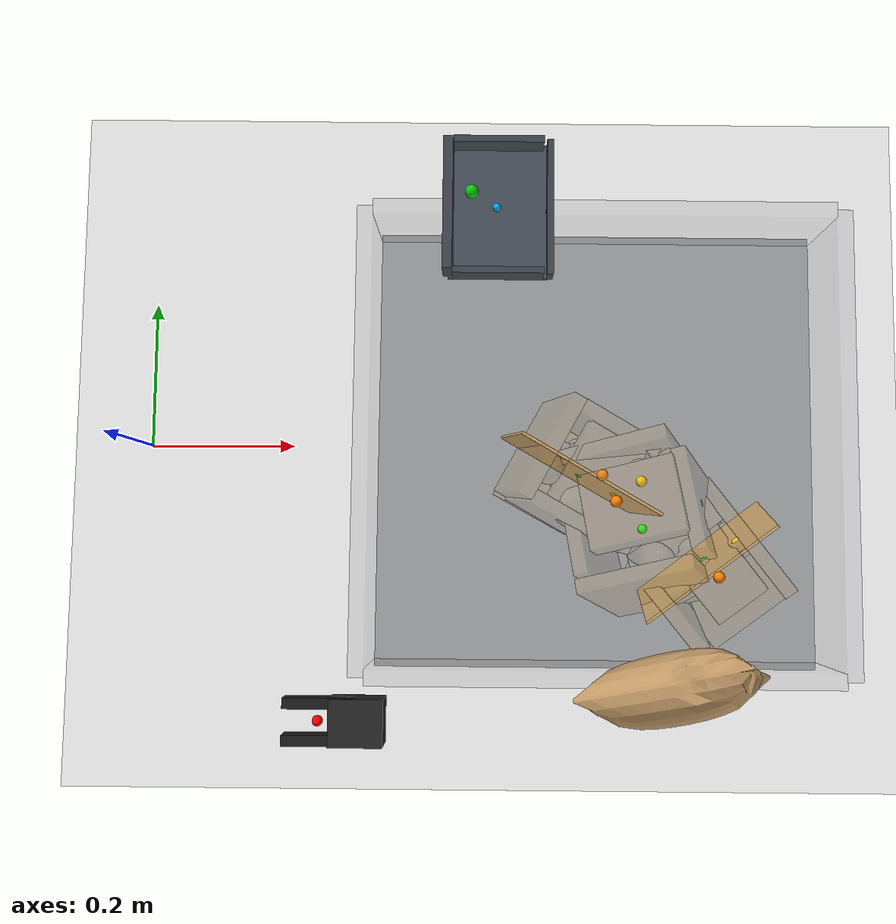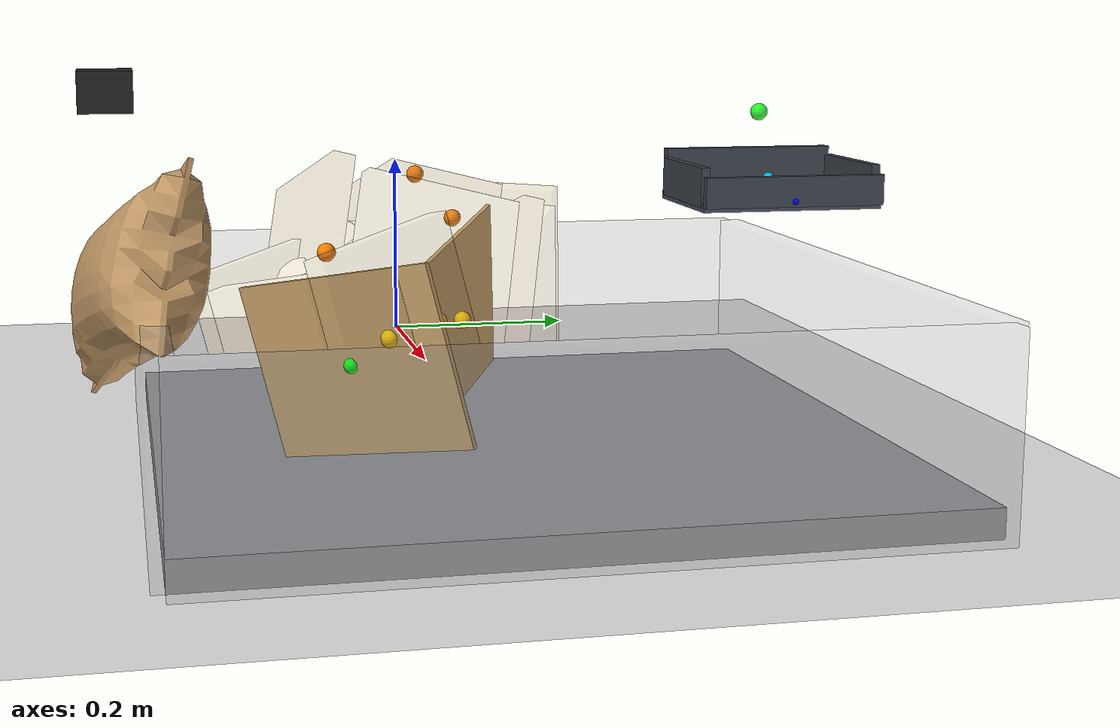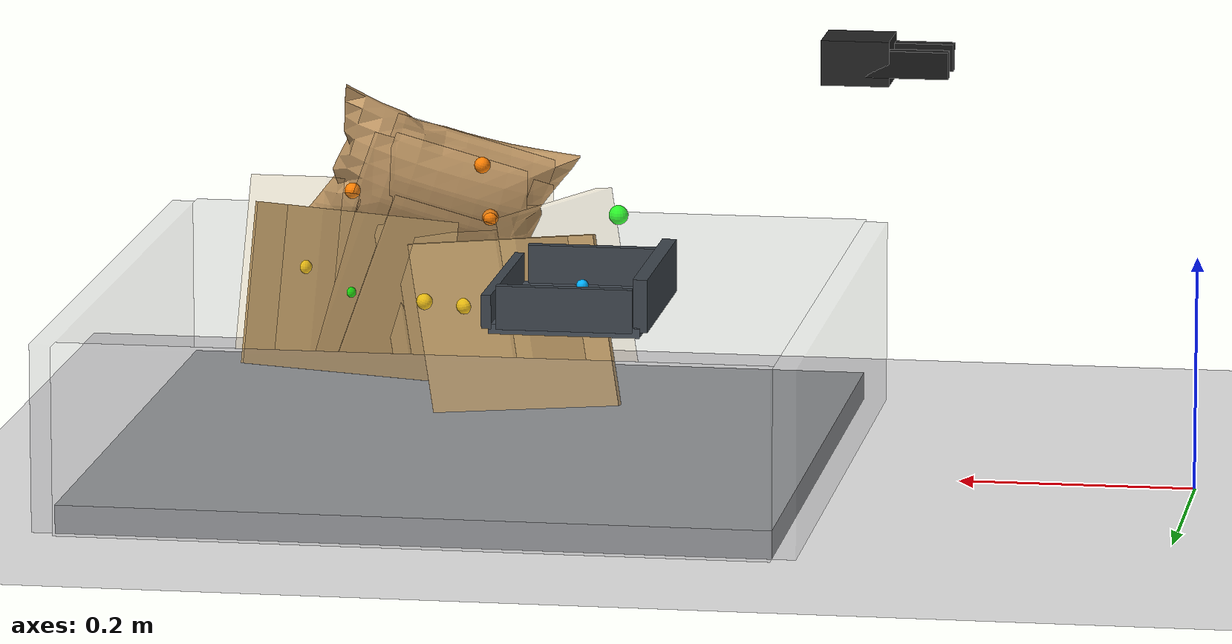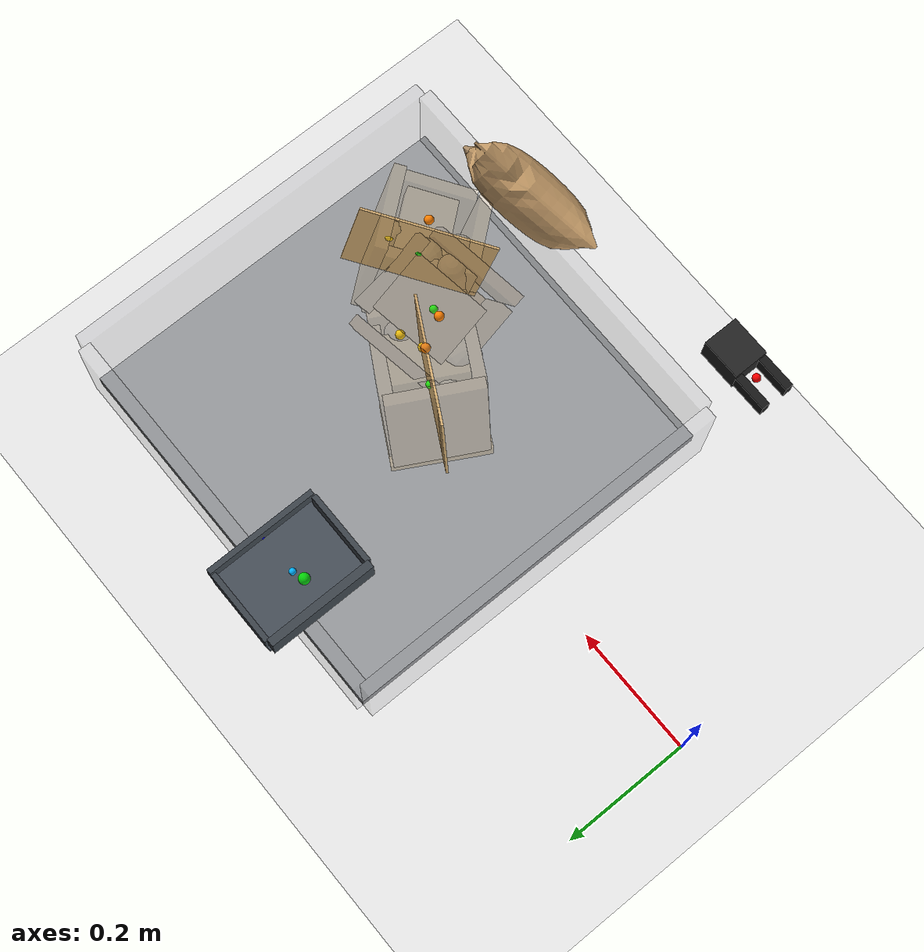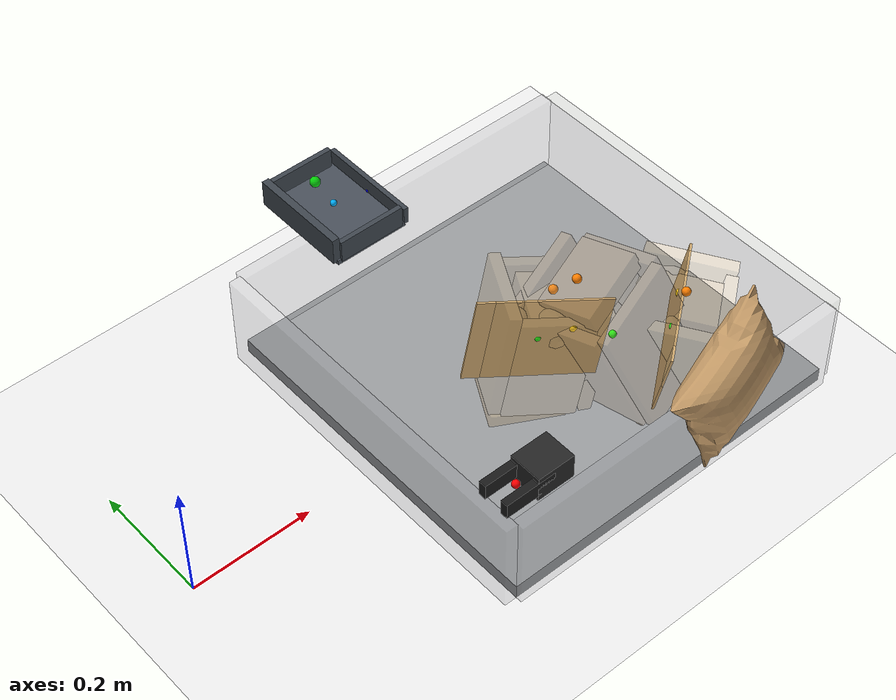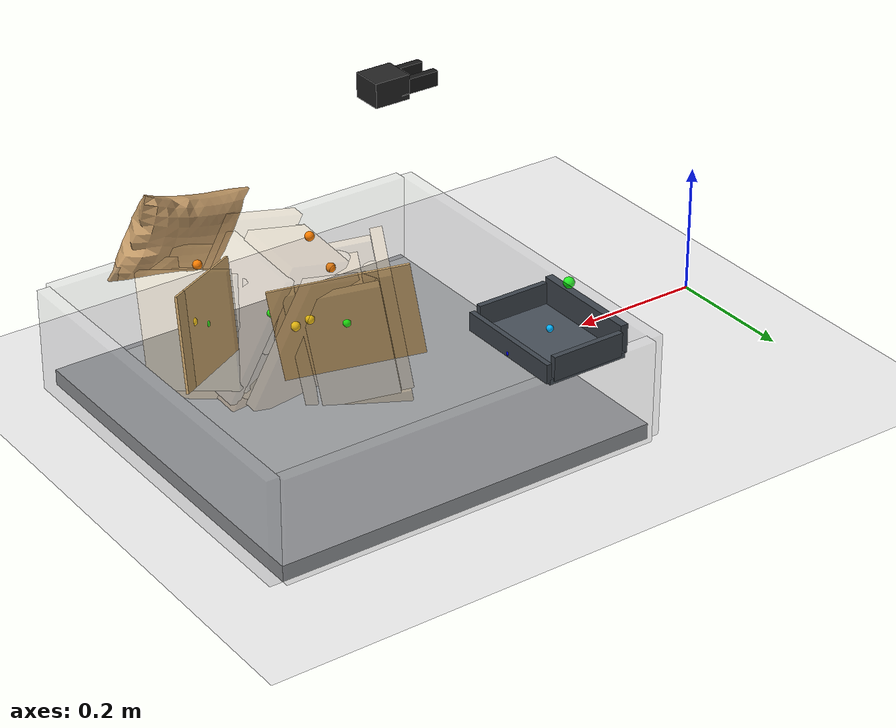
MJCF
<mujoco model="low_fill_top_collapsed_top_exposed_ep0_try2">
  <compiler angle="radian" coordinate="local" inertiafromgeom="true" meshdir="D:/Michael/2025/01.Research/01.Parceldetection/16.Pybullet/bullet3-master (1)/bullet3-master/examples/pybullet/examples/DeformableTest/Sackcodex2/object"/>
  <option timestep="0.002" gravity="0 0 -9.81" integrator="implicitfast" iterations="100" tolerance="1e-8"/>
  <size memory="768M" nconmax="12000"/>

  <visual>
    <global azimuth="128" elevation="-20"/>
    <headlight ambient="0.34 0.34 0.34" diffuse="0.78 0.78 0.78" specular="0.15 0.15 0.15"/>
    <rgba haze="0.11 0.13 0.18 1"/>
  </visual>

  <default>
    <geom condim="4" friction="1.15 0.03 0.01" margin="0.003" solimp="0.93 0.98 0.003" solref="0.012 1"/>
    <joint damping="1.2" armature="0.002"/>
    <position kp="2500" forcelimited="true" forcerange="-420 420"/>
    <motor ctrllimited="true"/>
  </default>

  <asset>
    <mesh name="sack_0_visual_mesh" file="sack2.obj" scale="0.0705 0.0705 0.0741"/>
    <mesh name="sack_1_visual_mesh" file="sack3.obj" scale="0.0765 0.0765 0.0806"/>
    <mesh name="sack_2_visual_mesh" file="sack2.obj" scale="0.0690 0.0690 0.0703"/>
  </asset>

  <worldbody>
    <light name="key" pos="0.85 0.15 1.8" dir="-0.2 -0.1 -1" directional="true"/>
    <geom name="floor" type="plane" size="2 2 0.1" rgba="0.93 0.93 0.93 1"/>
    <geom name="work_pad" type="box" pos="0.62 0 0.012" size="0.30 0.30 0.012" rgba="0.60 0.61 0.62 1" friction="1.4 0.05 0.01"/>
    <geom name="corral_front" type="box" pos="0.93 0.00 0.08" size="0.010 0.30 0.08" rgba="0.55 0.55 0.58 0.22" friction="1.0 0.03 0.01"/>
    <geom name="corral_back" type="box" pos="0.31 0.00 0.08" size="0.010 0.30 0.08" rgba="0.55 0.55 0.58 0.18" friction="1.0 0.03 0.01"/>
    <geom name="corral_left" type="box" pos="0.62 0.30 0.08" size="0.30 0.010 0.08" rgba="0.55 0.55 0.58 0.14" friction="1.0 0.03 0.01"/>
    <geom name="corral_right" type="box" pos="0.62 -0.30 0.08" size="0.30 0.010 0.08" rgba="0.55 0.55 0.58 0.14" friction="1.0 0.03 0.01"/>
    <camera name="overview" pos="1.22 0.00 0.92" xyaxes="0 1 0 -0.46 0 0.88"/>

    <body name="gripper_mocap" mocap="true" pos="0.36 -0.33 0.30" quat="0.707107 0 -0.707107 0"/>
    <body name="scoop_mocap" mocap="true" pos="0.42 0.28 0.20" quat="1 0 0 0"/>

    <body name="gripper_ctrl_base" pos="0.36 -0.33 0.30">
      <inertial pos="0 0 0" mass="0.001" diaginertia="1e-6 1e-6 1e-6"/>
      <joint name="gripper_ctrl_x" type="slide" axis="1 0 0" limited="true" range="0.20 1.00"/>
      <body name="gripper_ctrl_y_body">
        <inertial pos="0 0 0" mass="0.001" diaginertia="1e-6 1e-6 1e-6"/>
        <joint name="gripper_ctrl_y" type="slide" axis="0 1 0" limited="true" range="-0.60 0.60"/>
        <body name="gripper_ctrl_z_body">
          <inertial pos="0 0 0" mass="0.001" diaginertia="1e-6 1e-6 1e-6"/>
          <joint name="gripper_ctrl_z" type="slide" axis="0 0 1" limited="true" range="0.04 0.70"/>
          <body name="gripper_ctrl_yaw_body">
            <inertial pos="0 0 0" mass="0.001" diaginertia="1e-6 1e-6 1e-6"/>
            <joint name="gripper_ctrl_yaw" type="hinge" axis="0 0 1" limited="true" range="-3.1416 3.1416"/>
            <body name="gripper_ctrl_pitch_body">
              <inertial pos="0 0 0" mass="0.001" diaginertia="1e-6 1e-6 1e-6"/>
              <joint name="gripper_ctrl_pitch" type="hinge" axis="0 1 0" limited="true" range="-3.1416 3.1416"/>
              <body name="gripper_ctrl_roll_body">
                <inertial pos="0 0 0" mass="0.001" diaginertia="1e-6 1e-6 1e-6"/>
                <joint name="gripper_ctrl_roll" type="hinge" axis="1 0 0" limited="true" range="-3.1416 3.1416"/>
              </body>
            </body>
          </body>
        </body>
      </body>
    </body>

    <body name="scoop_ctrl_base" pos="0.42 0.28 0.20">
      <inertial pos="0 0 0" mass="0.001" diaginertia="1e-6 1e-6 1e-6"/>
      <joint name="scoop_ctrl_x" type="slide" axis="1 0 0" limited="true" range="0.20 1.00"/>
      <body name="scoop_ctrl_y_body">
        <inertial pos="0 0 0" mass="0.001" diaginertia="1e-6 1e-6 1e-6"/>
        <joint name="scoop_ctrl_y" type="slide" axis="0 1 0" limited="true" range="-0.60 0.60"/>
        <body name="scoop_ctrl_z_body">
          <inertial pos="0 0 0" mass="0.001" diaginertia="1e-6 1e-6 1e-6"/>
          <joint name="scoop_ctrl_z" type="slide" axis="0 0 1" limited="true" range="0.04 0.70"/>
          <body name="scoop_ctrl_yaw_body">
            <inertial pos="0 0 0" mass="0.001" diaginertia="1e-6 1e-6 1e-6"/>
            <joint name="scoop_ctrl_yaw" type="hinge" axis="0 0 1" limited="true" range="-3.1416 3.1416"/>
            <body name="scoop_ctrl_pitch_body">
              <inertial pos="0 0 0" mass="0.001" diaginertia="1e-6 1e-6 1e-6"/>
              <joint name="scoop_ctrl_pitch" type="hinge" axis="0 1 0" limited="true" range="-3.1416 3.1416"/>
              <body name="scoop_ctrl_roll_body">
                <inertial pos="0 0 0" mass="0.001" diaginertia="1e-6 1e-6 1e-6"/>
                <joint name="scoop_ctrl_roll" type="hinge" axis="1 0 0" limited="true" range="-3.1416 3.1416"/>
              </body>
            </body>
          </body>
        </body>
      </body>
    </body>

    <body name="gripper_tool" pos="0.36 -0.33 0.30" quat="0.707107 0 -0.707107 0">
      <freejoint name="gripper_tool_free"/>
      <inertial pos="0 0 0.04" mass="0.08" diaginertia="0.0002 0.0002 0.0002"/>
      <geom name="gripper_palm" type="box" pos="0 0 0.030" size="0.020 0.026 0.030" rgba="0.14 0.14 0.14 1"/>
      <body name="left_finger_body" pos="0 0 0.072">
        <joint name="left_finger_slide" type="slide" axis="0 1 0" limited="true" range="0.010 0.040" damping="12"/>
        <geom name="left_finger_geom" type="box" pos="0 0.020 0" size="0.012 0.006 0.040" rgba="0.10 0.10 0.10 1" friction="2.2 0.05 0.01"/>
      </body>
      <body name="right_finger_body" pos="0 0 0.072">
        <joint name="right_finger_slide" type="slide" axis="0 -1 0" limited="true" range="0.010 0.040" damping="12"/>
        <geom name="right_finger_geom" type="box" pos="0 -0.020 0" size="0.012 0.006 0.040" rgba="0.10 0.10 0.10 1" friction="2.2 0.05 0.01"/>
      </body>
      <site name="gripper_pinch_site" pos="0 0 0.074" size="0.006" rgba="1 0 0 1"/>
    </body>

    <body name="scoop_tool" pos="0.42 0.28 0.20" quat="1 0 0 0">
      <freejoint name="scoop_tool_free"/>
      <inertial pos="0 0 0.02" mass="0.10" diaginertia="0.0003 0.0003 0.0003"/>
      <geom name="scoop_plate" type="box" pos="0.062 0 0" size="0.062 0.085 0.004" rgba="0.28 0.31 0.35 1" friction="1.7 0.05 0.01"/>
      <geom name="scoop_lip" type="box" pos="0.126 0 0.014" size="0.004 0.085 0.014" rgba="0.24 0.27 0.30 1" friction="1.7 0.05 0.01"/>
      <geom name="scoop_left_rail" type="box" pos="0.062 0.082 0.018" size="0.056 0.004 0.018" rgba="0.24 0.27 0.30 1"/>
      <geom name="scoop_right_rail" type="box" pos="0.062 -0.082 0.018" size="0.056 0.004 0.018" rgba="0.24 0.27 0.30 1"/>
      <geom name="scoop_backstop" type="box" pos="0.000 0 0.022" size="0.006 0.082 0.022" rgba="0.24 0.27 0.30 1"/>
      <site name="scoop_tip_site" pos="0.126 0 0.005" size="0.005" rgba="0 0 1 1"/>
      <site name="scoop_center_site" pos="0.060 0 0.020" size="0.005" rgba="0 0.7 1 1"/>
      <site name="score_overlay_site" pos="0.030 0 0.080" size="0.008" rgba="0 1 0 0.8"/>
    </body>

    <body name="sack_0" pos="0.5914 -0.0403 0.1145" euler="0.0580 0.1599 -2.0792">
      <freejoint name="sack_0_free"/>

      <geom name="sack_0_visual" type="mesh" mesh="sack_0_visual_mesh" rgba="0.820 0.670 0.440 0.92" contype="0" conaffinity="0"/>
      <site name="sack_0_center_site" pos="0 0 0.000" size="0.006" rgba="0 1 0 1"/>
      <site name="sack_0_top_site" pos="0 0.0060 0.0939" size="0.007" rgba="1 0.5 0 1"/>
      <site name="sack_0_side_site" pos="0.0000 0.0498 0.018" size="0.007" rgba="1 0.8 0 1"/>

      <geom name="sack_0_core_geom" type="ellipsoid" pos="0 0 0.0056" size="0.0456 0.0358 0.0681" mass="0.7001" rgba="0.820 0.670 0.440 0.12" friction="1.0 0.03 0.01"/>
      <geom name="sack_0_core_front" type="capsule" fromto="-0.0200 0 -0.0200 0.0450 0 0.0600" size="0.0303" mass="0.1667" rgba="0.820 0.670 0.440 0.10"/>
      <geom name="sack_0_core_left" type="capsule" fromto="-0.008 0.0300 -0.010 0.018 0.0480 0.060" size="0.0241" mass="0.3000" rgba="0.820 0.670 0.440 0.10"/>
      <geom name="sack_0_core_right" type="capsule" fromto="-0.006 -0.0300 -0.008 0.020 -0.0500 0.054" size="0.0221" mass="0.3000" rgba="0.820 0.670 0.440 0.10"/>

      <body name="sack_0_bottom_support_proxy_body" pos="0 -0.0149 -0.0952">
        <joint name="sack_0_bottom_x" type="slide" axis="1 0 0" limited="true" range="-0.012 0.012" damping="18" stiffness="469.8"/>
        <joint name="sack_0_bottom_y" type="slide" axis="0 1 0" limited="true" range="-0.012 0.012" damping="18" stiffness="469.8"/>
        <joint name="sack_0_bottom_z" type="slide" axis="0 0 1" limited="true" range="-0.008 0.020" damping="24" stiffness="578.6"/>
        <geom name="sack_0_bottom_support_proxy" type="box" size="0.0733 0.0558 0.0100" mass="0.1334" rgba="0.820 0.670 0.440 0.34" friction="1.55 0.05 0.01"/>
      </body>

      <body name="sack_0_top_grasp_proxy_body" pos="0.0000 0.0060 0.0639">
        <joint name="sack_0_top_x" type="slide" axis="1 0 0" limited="true" range="-0.018 0.018" damping="12" stiffness="180.5"/>
        <joint name="sack_0_top_y" type="slide" axis="0 1 0" limited="true" range="-0.018 0.018" damping="12" stiffness="180.5"/>
        <joint name="sack_0_top_z" type="slide" axis="0 0 1" limited="true" range="-0.040 0.010" damping="14" stiffness="133.3"/>
        <geom name="sack_0_top_grasp_proxy" type="box" size="0.0573 0.0398 0.0150" mass="0.1000" rgba="0.820 0.670 0.440 0.26" friction="2.2 0.05 0.01"/>
      </body>

      <body name="sack_0_left_side_proxy_body" pos="0 0.0699 0.010">
        <joint name="sack_0_left_side_slide" type="slide" axis="0 -1 0" limited="true" range="-0.028 0.016" damping="16" stiffness="235.2"/>
        <geom name="sack_0_left_side_proxy" type="box" size="0.0693 0.0090 0.0932" mass="0.1000" rgba="0.820 0.670 0.440 0.24"/>
      </body>

      <body name="sack_0_right_side_proxy_body" pos="0 -0.0659 0.010">
        <joint name="sack_0_right_side_slide" type="slide" axis="0 1 0" limited="true" range="-0.028 0.016" damping="16" stiffness="218.0"/>
        <geom name="sack_0_right_side_proxy" type="box" size="0.0693 0.0090 0.0932" mass="0.1000" rgba="0.820 0.670 0.440 0.24"/>
      </body>

      <body name="sack_0_front_proxy_body" pos="0.0633 0 0.000">
        <joint name="sack_0_front_slide" type="slide" axis="-1 0 0" limited="true" range="-0.022 0.012" damping="15" stiffness="224.9"/>
        <geom name="sack_0_front_support_proxy" type="box" size="0.0090 0.0558 0.0912" mass="0.0833" rgba="0.820 0.670 0.440 0.22"/>
      </body>

      <body name="sack_0_back_proxy_body" pos="-0.0633 0 0.000">
        <joint name="sack_0_back_slide" type="slide" axis="1 0 0" limited="true" range="-0.022 0.012" damping="15" stiffness="207.7"/>
        <geom name="sack_0_back_support_proxy" type="box" size="0.0090 0.0558 0.0912" mass="0.0833" rgba="0.820 0.670 0.440 0.22"/>
      </body>

      <body name="sack_0_shape_proxy_body" pos="0.0000 0.0220 0.0367">
        <joint name="sack_0_bulge_y" type="slide" axis="0 1 0" limited="true" range="-0.020 0.020" damping="8" stiffness="93.5"/>
        <joint name="sack_0_bulge_z" type="slide" axis="0 0 1" limited="true" range="-0.014 0.028" damping="8" stiffness="95.1"/>
        <geom name="sack_0_shape_proxy" type="ellipsoid" size="0.0201 0.0162 0.0263" mass="0.0667" rgba="0.820 0.670 0.440 0.28"/>
      </body>
    </body>

    <body name="sack_1" pos="0.6716 -0.1124 0.1231" euler="-0.1977 -0.3567 0.1618">
      <freejoint name="sack_1_free"/>

      <geom name="sack_1_visual" type="mesh" mesh="sack_1_visual_mesh" rgba="0.760 0.600 0.400 0.92" contype="0" conaffinity="0"/>
      <site name="sack_1_center_site" pos="0 0 0.000" size="0.006" rgba="0 1 0 1"/>
      <site name="sack_1_top_site" pos="0 0.0060 0.1338" size="0.007" rgba="1 0.5 0 1"/>
      <site name="sack_1_side_site" pos="0.0140 0.0571 0.018" size="0.007" rgba="1 0.8 0 1"/>

      <geom name="sack_1_core_geom" type="ellipsoid" pos="0 0 0.0059" size="0.0447 0.0350 0.0785" mass="0.8870" rgba="0.760 0.600 0.400 0.12" friction="1.0 0.03 0.01"/>
      <geom name="sack_1_core_front" type="capsule" fromto="-0.0060 0 -0.0200 0.0590 0 0.0600" size="0.0305" mass="0.2112" rgba="0.760 0.600 0.400 0.10"/>
      <geom name="sack_1_core_left" type="capsule" fromto="-0.008 0.0359 -0.010 0.018 0.0539 0.060" size="0.0242" mass="0.3802" rgba="0.760 0.600 0.400 0.10"/>
      <geom name="sack_1_core_right" type="capsule" fromto="-0.006 -0.0359 -0.008 0.020 -0.0559 0.054" size="0.0222" mass="0.3802" rgba="0.760 0.600 0.400 0.10"/>

      <body name="sack_1_bottom_support_proxy_body" pos="0 0.0008 -0.1071">
        <joint name="sack_1_bottom_x" type="slide" axis="1 0 0" limited="true" range="-0.012 0.012" damping="18" stiffness="473.7"/>
        <joint name="sack_1_bottom_y" type="slide" axis="0 1 0" limited="true" range="-0.012 0.012" damping="18" stiffness="473.7"/>
        <joint name="sack_1_bottom_z" type="slide" axis="0 0 1" limited="true" range="-0.008 0.020" damping="24" stiffness="583.4"/>
        <geom name="sack_1_bottom_support_proxy" type="box" size="0.0754 0.0631 0.0100" mass="0.1690" rgba="0.760 0.600 0.400 0.34" friction="1.55 0.05 0.01"/>
      </body>

      <body name="sack_1_top_grasp_proxy_body" pos="0.0140 0.0060 0.1038">
        <joint name="sack_1_top_x" type="slide" axis="1 0 0" limited="true" range="-0.018 0.018" damping="12" stiffness="182.0"/>
        <joint name="sack_1_top_y" type="slide" axis="0 1 0" limited="true" range="-0.018 0.018" damping="12" stiffness="182.0"/>
        <joint name="sack_1_top_z" type="slide" axis="0 0 1" limited="true" range="-0.040 0.010" damping="14" stiffness="134.6"/>
        <geom name="sack_1_top_grasp_proxy" type="box" size="0.0594 0.0471 0.0150" mass="0.1267" rgba="0.760 0.600 0.400 0.26" friction="2.2 0.05 0.01"/>
      </body>

      <body name="sack_1_left_side_proxy_body" pos="0 0.0830 0.010">
        <joint name="sack_1_left_side_slide" type="slide" axis="0 -1 0" limited="true" range="-0.028 0.016" damping="16" stiffness="238.7"/>
        <geom name="sack_1_left_side_proxy" type="box" size="0.0714 0.0090 0.1051" mass="0.1267" rgba="0.760 0.600 0.400 0.24"/>
      </body>

      <body name="sack_1_right_side_proxy_body" pos="0 -0.0790 0.010">
        <joint name="sack_1_right_side_slide" type="slide" axis="0 1 0" limited="true" range="-0.028 0.016" damping="16" stiffness="221.3"/>
        <geom name="sack_1_right_side_proxy" type="box" size="0.0714 0.0090 0.1051" mass="0.1267" rgba="0.760 0.600 0.400 0.24"/>
      </body>

      <body name="sack_1_front_proxy_body" pos="0.0794 0 0.000">
        <joint name="sack_1_front_slide" type="slide" axis="-1 0 0" limited="true" range="-0.022 0.012" damping="15" stiffness="226.9"/>
        <geom name="sack_1_front_support_proxy" type="box" size="0.0090 0.0631 0.1031" mass="0.1056" rgba="0.760 0.600 0.400 0.22"/>
      </body>

      <body name="sack_1_back_proxy_body" pos="-0.0654 0 0.000">
        <joint name="sack_1_back_slide" type="slide" axis="1 0 0" limited="true" range="-0.022 0.012" damping="15" stiffness="209.4"/>
        <geom name="sack_1_back_support_proxy" type="box" size="0.0090 0.0631 0.1031" mass="0.1056" rgba="0.760 0.600 0.400 0.22"/>
      </body>

      <body name="sack_1_shape_proxy_body" pos="0.0084 0.0279 0.0354">
        <joint name="sack_1_bulge_y" type="slide" axis="0 1 0" limited="true" range="-0.020 0.020" damping="8" stiffness="90.9"/>
        <joint name="sack_1_bulge_z" type="slide" axis="0 0 1" limited="true" range="-0.014 0.028" damping="8" stiffness="93.1"/>
        <geom name="sack_1_shape_proxy" type="ellipsoid" size="0.0202 0.0163 0.0261" mass="0.0845" rgba="0.760 0.600 0.400 0.28"/>
      </body>
    </body>

    <body name="sack_2" pos="0.7539 -0.1533 0.1135" euler="0.2449 -0.0539 2.2555">
      <freejoint name="sack_2_free"/>

      <geom name="sack_2_visual" type="mesh" mesh="sack_2_visual_mesh" rgba="0.820 0.670 0.440 0.92" contype="0" conaffinity="0"/>
      <site name="sack_2_center_site" pos="0 0 0.000" size="0.006" rgba="0 1 0 1"/>
      <site name="sack_2_top_site" pos="0 -0.0060 0.0884" size="0.007" rgba="1 0.5 0 1"/>
      <site name="sack_2_side_site" pos="0.0000 -0.0472 0.018" size="0.007" rgba="1 0.8 0 1"/>

      <geom name="sack_2_core_geom" type="ellipsoid" pos="0 0 0.0056" size="0.0448 0.0346 0.0664" mass="0.7975" rgba="0.820 0.670 0.440 0.12" friction="1.0 0.03 0.01"/>
      <geom name="sack_2_core_front" type="capsule" fromto="-0.0200 0 -0.0200 0.0450 0 0.0600" size="0.0293" mass="0.1899" rgba="0.820 0.670 0.440 0.10"/>
      <geom name="sack_2_core_left" type="capsule" fromto="-0.008 0.0285 -0.010 0.018 0.0465 0.060" size="0.0241" mass="0.3418" rgba="0.820 0.670 0.440 0.10"/>
      <geom name="sack_2_core_right" type="capsule" fromto="-0.006 -0.0285 -0.008 0.020 -0.0485 0.054" size="0.0221" mass="0.3418" rgba="0.820 0.670 0.440 0.10"/>

      <body name="sack_2_bottom_support_proxy_body" pos="0 0.0123 -0.0876">
        <joint name="sack_2_bottom_x" type="slide" axis="1 0 0" limited="true" range="-0.012 0.012" damping="18" stiffness="439.0"/>
        <joint name="sack_2_bottom_y" type="slide" axis="0 1 0" limited="true" range="-0.012 0.012" damping="18" stiffness="439.0"/>
        <joint name="sack_2_bottom_z" type="slide" axis="0 0 1" limited="true" range="-0.008 0.020" damping="24" stiffness="541.0"/>
        <geom name="sack_2_bottom_support_proxy" type="box" size="0.0723 0.0532 0.0100" mass="0.1519" rgba="0.820 0.670 0.440 0.34" friction="1.55 0.05 0.01"/>
      </body>

      <body name="sack_2_top_grasp_proxy_body" pos="0.0000 -0.0060 0.0584">
        <joint name="sack_2_top_x" type="slide" axis="1 0 0" limited="true" range="-0.018 0.018" damping="12" stiffness="168.5"/>
        <joint name="sack_2_top_y" type="slide" axis="0 1 0" limited="true" range="-0.018 0.018" damping="12" stiffness="168.5"/>
        <joint name="sack_2_top_z" type="slide" axis="0 0 1" limited="true" range="-0.040 0.010" damping="14" stiffness="123.0"/>
        <geom name="sack_2_top_grasp_proxy" type="box" size="0.0563 0.0372 0.0150" mass="0.1139" rgba="0.820 0.670 0.440 0.26" friction="2.2 0.05 0.01"/>
      </body>

      <body name="sack_2_left_side_proxy_body" pos="0 0.0657 0.010">
        <joint name="sack_2_left_side_slide" type="slide" axis="0 -1 0" limited="true" range="-0.028 0.016" damping="16" stiffness="214.6"/>
        <geom name="sack_2_left_side_proxy" type="box" size="0.0683 0.0090 0.0856" mass="0.1139" rgba="0.820 0.670 0.440 0.24"/>
      </body>

      <body name="sack_2_right_side_proxy_body" pos="0 -0.0617 0.010">
        <joint name="sack_2_right_side_slide" type="slide" axis="0 1 0" limited="true" range="-0.028 0.016" damping="16" stiffness="199.1"/>
        <geom name="sack_2_right_side_proxy" type="box" size="0.0683 0.0090 0.0856" mass="0.1139" rgba="0.820 0.670 0.440 0.24"/>
      </body>

      <body name="sack_2_front_proxy_body" pos="0.0623 0 0.000">
        <joint name="sack_2_front_slide" type="slide" axis="-1 0 0" limited="true" range="-0.022 0.012" damping="15" stiffness="209.5"/>
        <geom name="sack_2_front_support_proxy" type="box" size="0.0090 0.0532 0.0836" mass="0.0949" rgba="0.820 0.670 0.440 0.22"/>
      </body>

      <body name="sack_2_back_proxy_body" pos="-0.0623 0 0.000">
        <joint name="sack_2_back_slide" type="slide" axis="1 0 0" limited="true" range="-0.022 0.012" damping="15" stiffness="194.0"/>
        <geom name="sack_2_back_support_proxy" type="box" size="0.0090 0.0532 0.0836" mass="0.0949" rgba="0.820 0.670 0.440 0.22"/>
      </body>

      <body name="sack_2_shape_proxy_body" pos="0.0000 -0.0205 0.0470">
        <joint name="sack_2_bulge_y" type="slide" axis="0 1 0" limited="true" range="-0.020 0.020" damping="8" stiffness="114.0"/>
        <joint name="sack_2_bulge_z" type="slide" axis="0 0 1" limited="true" range="-0.014 0.028" damping="8" stiffness="110.5"/>
        <geom name="sack_2_shape_proxy" type="ellipsoid" size="0.0201 0.0162 0.0263" mass="0.0760" rgba="0.820 0.670 0.440 0.28"/>
      </body>
    </body>
  </worldbody>

  <equality>
    <weld name="gripper_follow" body1="gripper_mocap" body2="gripper_tool" torquescale="400" solref="0.002 1" solimp="0.99 0.999 0.0001"/>
    <weld name="scoop_follow" body1="scoop_mocap" body2="scoop_tool" torquescale="500" solref="0.002 1" solimp="0.99 0.999 0.0001"/>
  </equality>

  <actuator>
    <position name="gripper_ctrl_x_act" joint="gripper_ctrl_x" ctrlrange="0.20 1.00" kp="3500" forcerange="-300 300"/>
    <position name="gripper_ctrl_y_act" joint="gripper_ctrl_y" ctrlrange="-0.60 0.60" kp="3500" forcerange="-300 300"/>
    <position name="gripper_ctrl_z_act" joint="gripper_ctrl_z" ctrlrange="0.04 0.70" kp="3500" forcerange="-300 300"/>
    <position name="gripper_ctrl_yaw_act" joint="gripper_ctrl_yaw" ctrlrange="-3.1416 3.1416" kp="1800" forcerange="-250 250"/>
    <position name="gripper_ctrl_pitch_act" joint="gripper_ctrl_pitch" ctrlrange="-3.1416 3.1416" kp="1800" forcerange="-250 250"/>
    <position name="gripper_ctrl_roll_act" joint="gripper_ctrl_roll" ctrlrange="-3.1416 3.1416" kp="1800" forcerange="-250 250"/>
    <position name="scoop_ctrl_x_act" joint="scoop_ctrl_x" ctrlrange="0.20 1.00" kp="3500" forcerange="-300 300"/>
    <position name="scoop_ctrl_y_act" joint="scoop_ctrl_y" ctrlrange="-0.60 0.60" kp="3500" forcerange="-300 300"/>
    <position name="scoop_ctrl_z_act" joint="scoop_ctrl_z" ctrlrange="0.04 0.70" kp="3500" forcerange="-300 300"/>
    <position name="scoop_ctrl_yaw_act" joint="scoop_ctrl_yaw" ctrlrange="-3.1416 3.1416" kp="1800" forcerange="-250 250"/>
    <position name="scoop_ctrl_pitch_act" joint="scoop_ctrl_pitch" ctrlrange="-3.1416 3.1416" kp="1800" forcerange="-250 250"/>
    <position name="scoop_ctrl_roll_act" joint="scoop_ctrl_roll" ctrlrange="-3.1416 3.1416" kp="1800" forcerange="-250 250"/>
    <position name="left_finger_act" joint="left_finger_slide" ctrlrange="0.010 0.040" kp="2800" forcerange="-220 220"/>
    <position name="right_finger_act" joint="right_finger_slide" ctrlrange="0.010 0.040" kp="2800" forcerange="-220 220"/>
  </actuator>

  <contact>
    <exclude body1="sack_0_top_grasp_proxy_body" body2="sack_0_left_side_proxy_body"/>
    <exclude body1="sack_0_top_grasp_proxy_body" body2="sack_0_right_side_proxy_body"/>
    <exclude body1="sack_1_top_grasp_proxy_body" body2="sack_1_left_side_proxy_body"/>
    <exclude body1="sack_1_top_grasp_proxy_body" body2="sack_1_right_side_proxy_body"/>
    <exclude body1="sack_2_top_grasp_proxy_body" body2="sack_2_left_side_proxy_body"/>
    <exclude body1="sack_2_top_grasp_proxy_body" body2="sack_2_right_side_proxy_body"/>
  </contact>
</mujoco>
